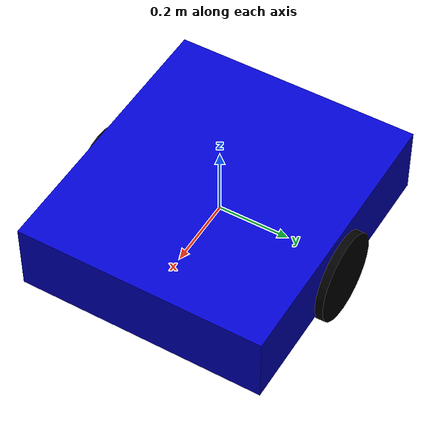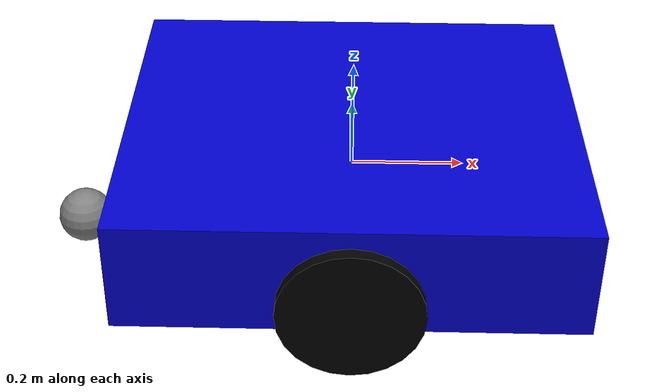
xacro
<?xml version="1.0"?>
<robot name="differential_drive_robot">

  <!-- Base Link -->
  <link name="base_link">
    <visual>
      <geometry>
        <box size="0.8 0.7 0.2"/>
      </geometry>
      <material name="blue">
        <color rgba="0.0 0.0 0.8 1.0"/>
      </material>
    </visual>
    <collision>
      <geometry>
        <box size="0.8 0.7 0.2"/>
      </geometry>
    </collision>
  </link>

  <!-- Wheels -->
  <link name="left_wheel">
    <visual>
      <geometry>
        <cylinder length="0.1" radius="0.125"/>
      </geometry>
      <material name="black">
        <color rgba="0.0 0.0 0.0 1.0"/>
      </material>
    </visual>
    <collision>
      <geometry>
        <cylinder length="0.1" radius="0.125"/>
      </geometry>
    </collision>
  </link>

  <link name="right_wheel">
    <visual>
      <geometry>
        <cylinder length="0.1" radius="0.125"/>
      </geometry>
      <material name="black"/>
    </visual>
    <collision>
      <geometry>
        <cylinder length="0.1" radius="0.125"/>
      </geometry>
    </collision>
  </link>

  <!-- Wheel Joints -->
  <joint name="left_wheel_joint" type="continuous">
    <parent link="base_link"/>
    <child link="left_wheel"/>
    <origin xyz="0 0.3225 -0.055" rpy="1.5708 0 0"/>
    <axis xyz="0 1 0"/>
  </joint>

  <joint name="right_wheel_joint" type="continuous">
    <parent link="base_link"/>
    <child link="right_wheel"/>
    <origin xyz="0 -0.3225 -0.055" rpy="1.5708 0 0"/>
    <axis xyz="0 1 0"/>
  </joint>

  <!-- Castor (Slippery Sphere) -->
  <link name="castor">
    <visual>
      <geometry>
        <sphere radius="0.05"/>
      </geometry>
      <material name="grey">
        <color rgba="0.5 0.5 0.5 1.0"/>
      </material>
    </visual>
    <collision>
      <geometry>
        <sphere radius="0.05"/>
      </geometry>
    </collision>
  </link>

  <joint name="castor_joint" type="fixed">
    <parent link="base_link"/>
    <child link="castor"/>
    <origin xyz="-0.5 0 -0.13"/>
  </joint>

  <!-- Odom Frame -->
  <link name="odom"/>
  <joint name="odom_joint" type="fixed">
    <parent link="base_link"/>
    <child link="odom"/>
    <origin xyz="-0.185 0 0.32"/>
  </joint>

  <!-- Velodyne Frame -->
  <link name="velodyne"/>
  <joint name="velodyne_joint" type="fixed">
    <parent link="base_link"/>
    <child link="velodyne"/>
    <origin xyz="-0.415 0 0.445"/>
  </joint>

</robot>
